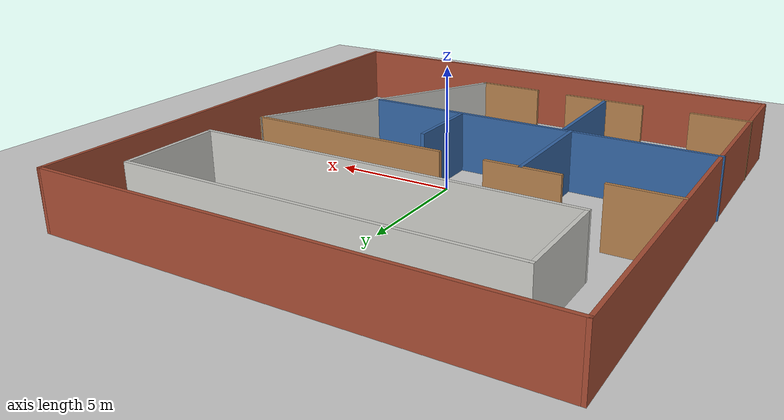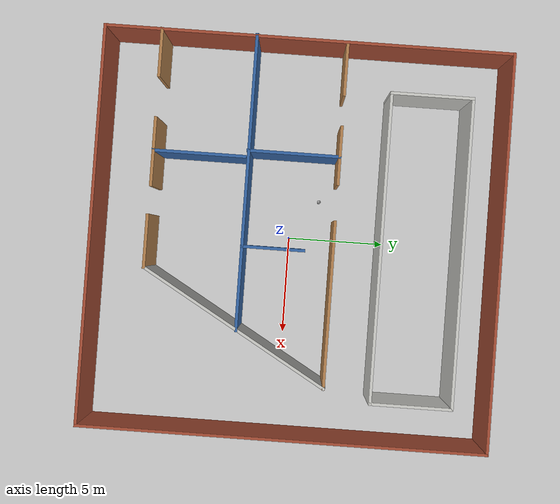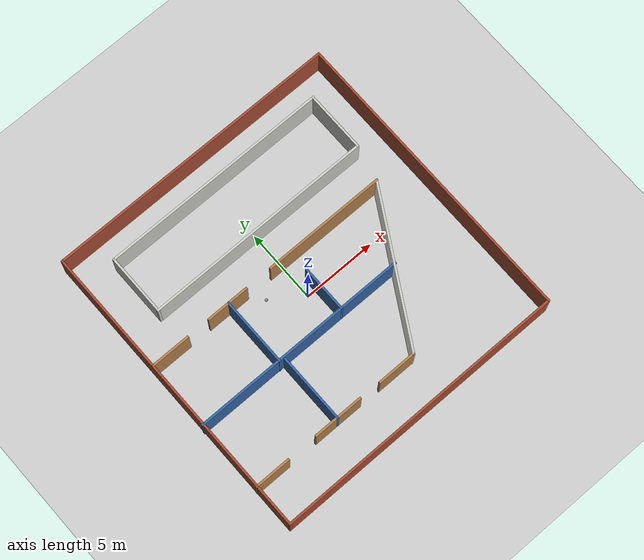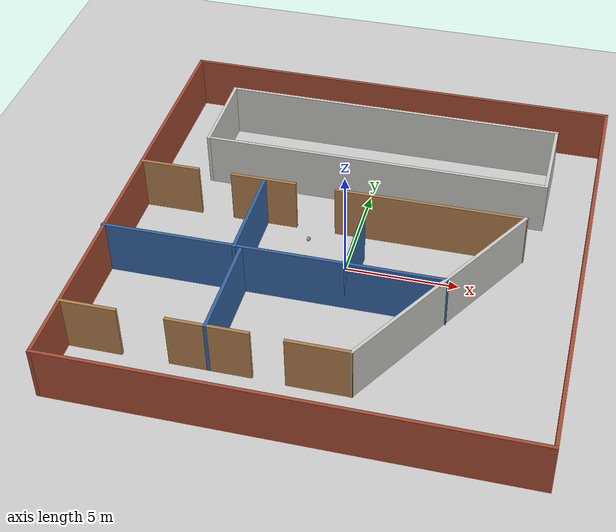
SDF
<sdf version="1.7">
 <world name="default">
  <plugin name="hello" filename="libhello.so"/>
  <light name="sun" type="directional">
   <pose>0 0 10 0 -0 0</pose>
   <diffuse>0.8 0.8 0.8 1</diffuse>
   <specular>0.2 0.2 0.2 1</specular>
   <attenuation>
    <range>1000</range>
    <constant>0.9</constant>
    <linear>0.01</linear>
    <quadratic>0.001</quadratic>
   </attenuation>
   <direction>-0.5 0.1 -0.9</direction>
   <spot><inner_angle>0</inner_angle><outer_angle>0</outer_angle><falloff>0</falloff></spot>
  </light>
  <model name="ground_plane">
   <static>1</static>
   <link name="link">
    <collision name="collision">
     <geometry><plane><normal>0 0 1</normal><size>100 100</size></plane></geometry>
     <surface>
      <contact><collide_bitmask>65535</collide_bitmask></contact>
      <friction><ode><mu>100</mu><mu2>50</mu2></ode></friction>
     </surface>
    </collision>
    <visual name="visual">
     <cast_shadows>0</cast_shadows>
     <geometry><plane><normal>0 0 1</normal><size>100 100</size></plane></geometry>
     <material>
      <script><uri>file://media/materials/scripts/gazebo.material</uri><name>Gazebo/Grey</name></script>
     </material>
    </visual>
   </link>
  </model>
  <gravity>0 0 -9.8</gravity>
  <magnetic_field>6e-06 2.3e-05 -4.2e-05</magnetic_field>
  <atmosphere type="adiabatic"/>
  <physics type="ode">
   <max_step_size>0.001</max_step_size>
   <real_time_factor>1</real_time_factor>
   <real_time_update_rate>1000</real_time_update_rate>
  </physics>
  <scene><ambient>0.4 0.4 0.4 1</ambient><background>0.7 0.7 0.7 1</background><shadows>1</shadows></scene>
  <spherical_coordinates>
   <surface_model>EARTH_WGS84</surface_model>
   <latitude_deg>0</latitude_deg>
   <longitude_deg>0</longitude_deg>
   <elevation>0</elevation>
   <heading_deg>0</heading_deg>
  </spherical_coordinates>
  <model name="hostelM1">
   <pose>0.03071 0.35996 0 0 -0 0</pose>
   <link name="Wall_10">
    <collision name="Wall_10_Collision">
     <geometry><box><size>4.25 0.15 2.5</size></box></geometry>
     <pose>0 0 1.25 0 -0 0</pose>
    </collision>
    <visual name="Wall_10_Visual">
     <pose>0 0 1.25 0 -0 0</pose>
     <geometry><box><size>4.25 0.15 2.5</size></box></geometry>
     <material>
      <script><uri>file://media/materials/scripts/gazebo.material</uri><name>Gazebo/CeilingTiled</name></script>
      <ambient>1 1 1 1</ambient>
     </material>
     <meta><layer>0</layer></meta>
    </visual>
    <pose>7.95036 6.33647 0 0 -0 -1.5708</pose>
   </link>
   <link name="Wall_11">
    <collision name="Wall_11_Collision">
     <geometry><box><size>15.75 0.15 2.5</size></box></geometry>
     <pose>0 0 1.25 0 -0 0</pose>
    </collision>
    <visual name="Wall_11_Visual">
     <pose>0 0 1.25 0 -0 0</pose>
     <geometry><box><size>15.75 0.15 2.5</size></box></geometry>
     <material>
      <script><uri>file://media/materials/scripts/gazebo.material</uri><name>Gazebo/CeilingTiled</name></script>
      <ambient>1 1 1 1</ambient>
     </material>
     <meta><layer>0</layer></meta>
    </visual>
    <pose>0.15036 4.28647 0 0 -0 3.14159</pose>
   </link>
   <link name="Wall_12">
    <collision name="Wall_12_Collision">
     <geometry><box><size>4.25 0.15 2.5</size></box></geometry>
     <pose>0 0 1.25 0 -0 0</pose>
    </collision>
    <visual name="Wall_12_Visual">
     <pose>0 0 1.25 0 -0 0</pose>
     <geometry><box><size>4.25 0.15 2.5</size></box></geometry>
     <material>
      <script><uri>file://media/materials/scripts/gazebo.material</uri><name>Gazebo/CeilingTiled</name></script>
      <ambient>1 1 1 1</ambient>
     </material>
     <meta><layer>0</layer></meta>
    </visual>
    <pose>-7.64964 6.33647 0 0 -0 1.5708</pose>
   </link>
   <link name="Wall_14">
    <collision name="Wall_14_Collision">
     <geometry><box><size>2.75 0.15 2.5</size></box></geometry>
     <pose>0 0 1.25 0 -0 0</pose>
    </collision>
    <visual name="Wall_14_Visual">
     <pose>0 0 1.25 0 -0 0</pose>
     <geometry><box><size>2.75 0.15 2.5</size></box></geometry>
     <material>
      <script><uri>file://media/materials/scripts/gazebo.material</uri><name>Gazebo/Wood</name></script>
      <ambient>0.203922 0.396078 0.643137 1</ambient>
     </material>
     <meta><layer>0</layer></meta>
    </visual>
    <pose>-8.69606 1.91358 0 0 -0 0</pose>
   </link>
   <link name="Wall_17">
    <collision name="Wall_17_Collision">
     <geometry><box><size>3 0.15 2.5</size></box></geometry>
     <pose>0 0 1.25 0 -0 0</pose>
    </collision>
    <visual name="Wall_17_Visual">
     <pose>0 0 1.25 0 -0 0</pose>
     <geometry><box><size>3 0.15 2.5</size></box></geometry>
     <material>
      <script><uri>file://media/materials/scripts/gazebo.material</uri><name>Gazebo/Wood</name></script>
      <ambient>0.203922 0.396078 0.643137 1</ambient>
     </material>
     <meta><layer>0</layer></meta>
    </visual>
    <pose>-4.32323 1.91358 0 0 -0 0</pose>
   </link>
   <link name="Wall_20">
    <collision name="Wall_20_Collision">
     <geometry><box><size>8.5 0.15 2.5</size></box></geometry>
     <pose>0 0 1.25 0 -0 0</pose>
    </collision>
    <visual name="Wall_20_Visual">
     <pose>0 0 1.25 0 -0 0</pose>
     <geometry><box><size>8.5 0.15 2.5</size></box></geometry>
     <material>
      <script><uri>file://media/materials/scripts/gazebo.material</uri><name>Gazebo/Wood</name></script>
      <ambient>0.203922 0.396078 0.643137 1</ambient>
     </material>
     <meta><layer>0</layer></meta>
    </visual>
    <pose>3.20053 1.91358 0 0 -0 0</pose>
   </link>
   <link name="Wall_21">
    <collision name="Wall_21_Collision">
     <geometry><box><size>11 0.15 2.5</size></box></geometry>
     <pose>0 0 1.25 0 -0 0</pose>
    </collision>
    <visual name="Wall_21_Visual">
     <pose>0 0 1.25 0 -0 0</pose>
     <geometry><box><size>11 0.15 2.5</size></box></geometry>
     <material>
      <script><uri>file://media/materials/scripts/gazebo.material</uri><name>Gazebo/CeilingTiled</name></script>
      <ambient>1 1 1 1</ambient>
     </material>
     <meta><layer>0</layer></meta>
    </visual>
    <pose>4.66303 -2.78461 0 0 -0 -2.0944</pose>
   </link>
   <link name="Wall_22">
    <collision name="Wall_22_Collision">
     <geometry><box><size>2.75 0.15 2.5</size></box></geometry>
     <pose>0 0 1.25 0 -0 0</pose>
    </collision>
    <visual name="Wall_22_Visual">
     <pose>0 0 1.25 0 -0 0</pose>
     <geometry><box><size>2.75 0.15 2.5</size></box></geometry>
     <material>
      <script><uri>file://media/materials/scripts/gazebo.material</uri><name>Gazebo/Wood</name></script>
      <ambient>1 1 1 1</ambient>
     </material>
     <meta><layer>0</layer></meta>
    </visual>
    <pose>0.650531 -7.4828 0 0 -0 3.14159</pose>
   </link>
   <link name="Wall_24">
    <collision name="Wall_24_Collision">
     <geometry><box><size>3.5 0.15 2.5</size></box></geometry>
     <pose>0 0 1.25 0 -0 0</pose>
    </collision>
    <visual name="Wall_24_Visual">
     <pose>0 0 1.25 0 -0 0</pose>
     <geometry><box><size>3.5 0.15 2.5</size></box></geometry>
     <material>
      <script><uri>file://media/materials/scripts/gazebo.material</uri><name>Gazebo/Wood</name></script>
      <ambient>1 1 1 1</ambient>
     </material>
     <meta><layer>0</layer></meta>
    </visual>
    <pose>-3.86314 -7.43166 0 0 -0 3.14159</pose>
   </link>
   <link name="Wall_26">
    <collision name="Wall_26_Collision">
     <geometry><box><size>2.5 0.15 2.5</size></box></geometry>
     <pose>0 0 1.25 0 -0 0</pose>
    </collision>
    <visual name="Wall_26_Visual">
     <pose>0 0 1.25 0 -0 0</pose>
     <geometry><box><size>2.5 0.15 2.5</size></box></geometry>
     <material>
      <script><uri>file://media/materials/scripts/gazebo.material</uri><name>Gazebo/Wood</name></script>
      <ambient>1 1 1 1</ambient>
     </material>
     <meta><layer>0</layer></meta>
    </visual>
    <pose>-8.8651 -7.43166 0 0 -0 3.14159</pose>
   </link>
   <link name="Wall_28">
    <collision name="Wall_28_Collision">
     <geometry><box><size>15 0.15 2.5</size></box></geometry>
     <pose>0 0 1.25 0 -0 0</pose>
    </collision>
    <visual name="Wall_28_Visual">
     <pose>0 0 1.25 0 -0 0</pose>
     <geometry><box><size>15 0.15 2.5</size></box></geometry>
     <material>
      <script><uri>file://media/materials/scripts/gazebo.material</uri><name>Gazebo/Grey</name></script>
      <ambient>0.203922 0.396078 0.643137 1</ambient>
     </material>
     <meta><layer>0</layer></meta>
    </visual>
    <pose>-2.65197 -2.6579 0 0 -0 0</pose>
   </link>
   <link name="Wall_32">
    <collision name="Wall_32_Collision">
     <geometry><box><size>4.75 0.15 2.5</size></box></geometry>
     <pose>0 0 1.25 0 -0 0</pose>
    </collision>
    <visual name="Wall_32_Visual">
     <pose>0 0 1.25 0 -0 0</pose>
     <geometry><box><size>4.75 0.15 2.5</size></box></geometry>
     <material>
      <script><uri>file://media/materials/scripts/gazebo.material</uri><name>Gazebo/Grey</name></script>
      <ambient>0.203922 0.396078 0.643137 1</ambient>
     </material>
     <meta><layer>0</layer></meta>
    </visual>
    <pose>-4.25137 -0.386422 0 0 -0 -1.5708</pose>
   </link>
   <link name="Wall_34">
    <collision name="Wall_34_Collision">
     <geometry><box><size>4.75 0.15 2.5</size></box></geometry>
     <pose>0 0 1.25 0 -0 0</pose>
    </collision>
    <visual name="Wall_34_Visual">
     <pose>0 0 1.25 0 -0 0</pose>
     <geometry><box><size>4.75 0.15 2.5</size></box></geometry>
     <material>
      <script><uri>file://media/materials/scripts/gazebo.material</uri><name>Gazebo/Grey</name></script>
      <ambient>0.203922 0.396078 0.643137 1</ambient>
     </material>
     <meta><layer>0</layer></meta>
    </visual>
    <pose>-3.92773 -5.13166 0 0 -0 1.5708</pose>
   </link>
   <link name="Wall_36">
    <collision name="Wall_36_Collision">
     <geometry><box><size>3.25 0.15 2.5</size></box></geometry>
     <pose>0 0 1.25 0 -0 0</pose>
    </collision>
    <visual name="Wall_36_Visual">
     <pose>0 0 1.25 0 -0 0</pose>
     <geometry><box><size>3.25 0.15 2.5</size></box></geometry>
     <material>
      <script><uri>file://media/materials/scripts/gazebo.material</uri><name>Gazebo/Grey</name></script>
      <ambient>0.203922 0.396078 0.643137 1</ambient>
     </material>
     <meta><layer>0</layer></meta>
    </visual>
    <pose>0.562842 -1.1079 0 0 -0 1.5708</pose>
   </link>
   <link name="Wall_4">
    <collision name="Wall_4_Collision">
     <geometry><box><size>20.25 0.15 2.5</size></box></geometry>
     <pose>0 0 1.25 0 -0 0</pose>
    </collision>
    <visual name="Wall_4_Visual">
     <pose>0 0 1.25 0 -0 0</pose>
     <geometry><box><size>20.25 0.15 2.5</size></box></geometry>
     <material>
      <script><uri>file://media/materials/scripts/gazebo.material</uri><name>Gazebo/Bricks</name></script>
      <ambient>1 1 1 1</ambient>
     </material>
     <meta><layer>0</layer></meta>
    </visual>
    <pose>0.026973 10.3 0 0 -0 0</pose>
   </link>
   <link name="Wall_5">
    <collision name="Wall_5_Collision">
     <geometry><box><size>20.75 0.15 2.5</size></box></geometry>
     <pose>0 0 1.25 0 -0 0</pose>
    </collision>
    <visual name="Wall_5_Visual">
     <pose>0 0 1.25 0 -0 0</pose>
     <geometry><box><size>20.75 0.15 2.5</size></box></geometry>
     <material>
      <script><uri>file://media/materials/scripts/gazebo.material</uri><name>Gazebo/Bricks</name></script>
      <ambient>1 1 1 1</ambient>
     </material>
     <meta><layer>0</layer></meta>
    </visual>
    <pose>10.077 0 0 0 -0 -1.5708</pose>
   </link>
   <link name="Wall_6">
    <collision name="Wall_6_Collision">
     <geometry><box><size>20.25 0.15 2.5</size></box></geometry>
     <pose>0 0 1.25 0 -0 0</pose>
    </collision>
    <visual name="Wall_6_Visual">
     <pose>0 0 1.25 0 -0 0</pose>
     <geometry><box><size>20.25 0.15 2.5</size></box></geometry>
     <material>
      <script><uri>file://media/materials/scripts/gazebo.material</uri><name>Gazebo/Bricks</name></script>
      <ambient>1 1 1 1</ambient>
     </material>
     <meta><layer>0</layer></meta>
    </visual>
    <pose>0.026973 -10.3 0 0 -0 3.14159</pose>
   </link>
   <link name="Wall_7">
    <collision name="Wall_7_Collision">
     <geometry><box><size>20.75 0.15 2.5</size></box></geometry>
     <pose>0 0 1.25 0 -0 0</pose>
    </collision>
    <visual name="Wall_7_Visual">
     <pose>0 0 1.25 0 -0 0</pose>
     <geometry><box><size>20.75 0.15 2.5</size></box></geometry>
     <material>
      <script><uri>file://media/materials/scripts/gazebo.material</uri><name>Gazebo/Bricks</name></script>
      <ambient>1 1 1 1</ambient>
     </material>
     <meta><layer>0</layer></meta>
    </visual>
    <pose>-10.023 0 0 0 -0 1.5708</pose>
   </link>
   <link name="Wall_9">
    <collision name="Wall_9_Collision">
     <geometry><box><size>15.75 0.15 2.5</size></box></geometry>
     <pose>0 0 1.25 0 -0 0</pose>
    </collision>
    <visual name="Wall_9_Visual">
     <pose>0 0 1.25 0 -0 0</pose>
     <geometry><box><size>15.75 0.15 2.5</size></box></geometry>
     <material>
      <script><uri>file://media/materials/scripts/gazebo.material</uri><name>Gazebo/CeilingTiled</name></script>
      <ambient>1 1 1 1</ambient>
     </material>
     <meta><layer>0</layer></meta>
    </visual>
    <pose>0.15036 8.38647 0 0 -0 0</pose>
   </link>
   <static>1</static>
  </model>
  <model name="Untitled">
   <link name="link_0">
    <inertial>
     <mass>1</mass>
     <inertia><ixx>0.1</ixx><ixy>0</ixy><ixz>0</ixz><iyy>0.1</iyy><iyz>0</iyz><izz>0.1</izz></inertia>
    </inertial>
    <visual name="visual">
     <geometry><sphere><radius>0.1</radius></sphere></geometry>
     <material>
      <lighting>1</lighting>
      <script><uri>file://media/materials/scripts/gazebo.material</uri><name>Gazebo/Grey</name></script>
      <shader type="pixel"><normal_map>__default__</normal_map></shader>
      <ambient>1 1 1 1</ambient>
      <diffuse>1 1 1 1</diffuse>
      <specular>1 1 1 1</specular>
      <emissive>1 1 1 1</emissive>
     </material>
    </visual>
    <collision name="collision">
     <geometry><sphere><radius>0.1</radius></sphere></geometry>
     <surface>
      <friction>
       <ode><mu>1</mu><mu2>1</mu2><fdir1>0 0 0</fdir1><slip1>0</slip1><slip2>0</slip2></ode>
       <torsional>
        <coefficient>1</coefficient>
        <patch_radius>0</patch_radius>
        <surface_radius>0</surface_radius>
        <use_patch_radius>1</use_patch_radius>
        <ode><slip>0</slip></ode>
       </torsional>
      </friction>
      <bounce><restitution_coefficient>0</restitution_coefficient><threshold>1e+06</threshold></bounce>
      <contact>
       <collide_without_contact>0</collide_without_contact>
       <collide_without_contact_bitmask>1</collide_without_contact_bitmask>
       <collide_bitmask>1</collide_bitmask>
       <ode>
        <soft_cfm>0</soft_cfm>
        <soft_erp>0.2</soft_erp>
        <kp>1e+13</kp>
        <kd>1</kd>
        <max_vel>0.01</max_vel>
        <min_depth>0</min_depth>
       </ode>
       <bullet>
        <split_impulse>1</split_impulse>
        <split_impulse_penetration_threshold>-0.01</split_impulse_penetration_threshold>
        <soft_cfm>0</soft_cfm>
        <soft_erp>0.2</soft_erp>
        <kp>1e+13</kp>
        <kd>1</kd>
       </bullet>
      </contact>
     </surface>
    </collision>
   </link>
   <static>0</static>
   <pose>-2.04846 1.45329 0.1 0 -0 0</pose>
  </model>
 </world>
</sdf>
